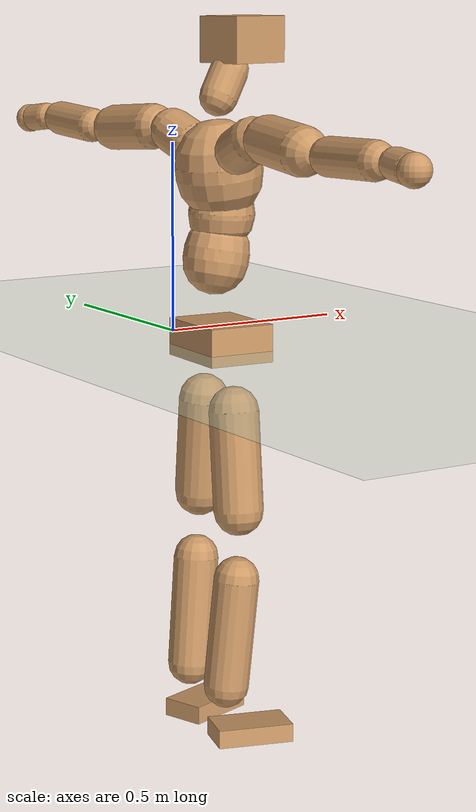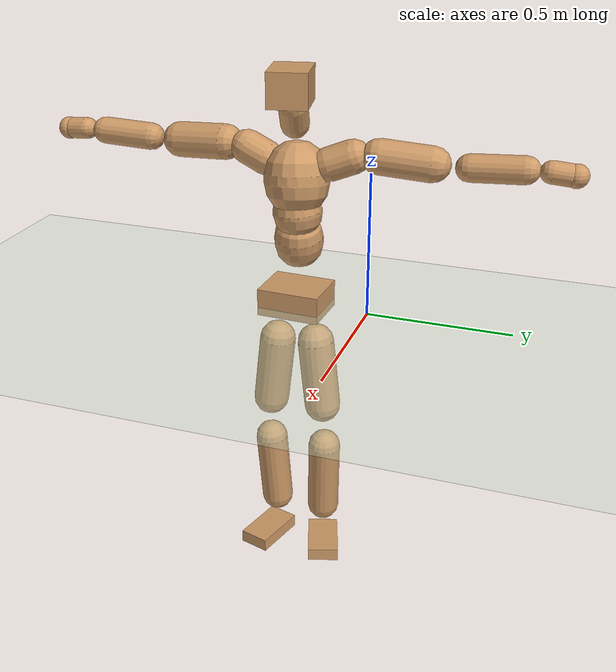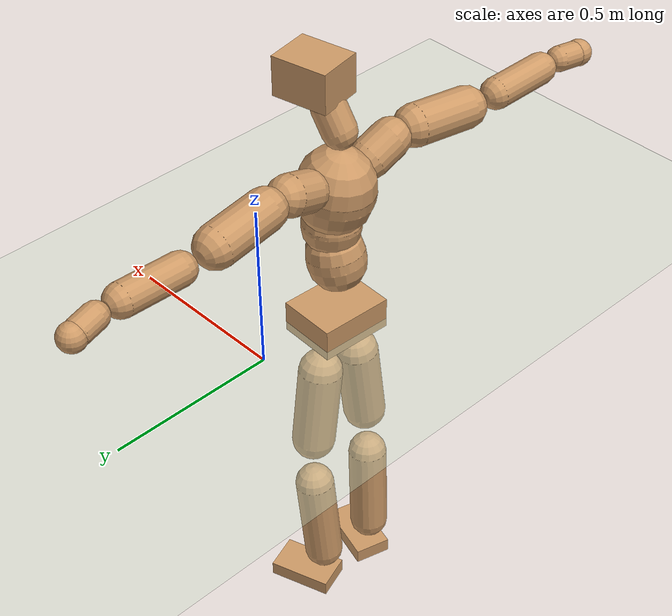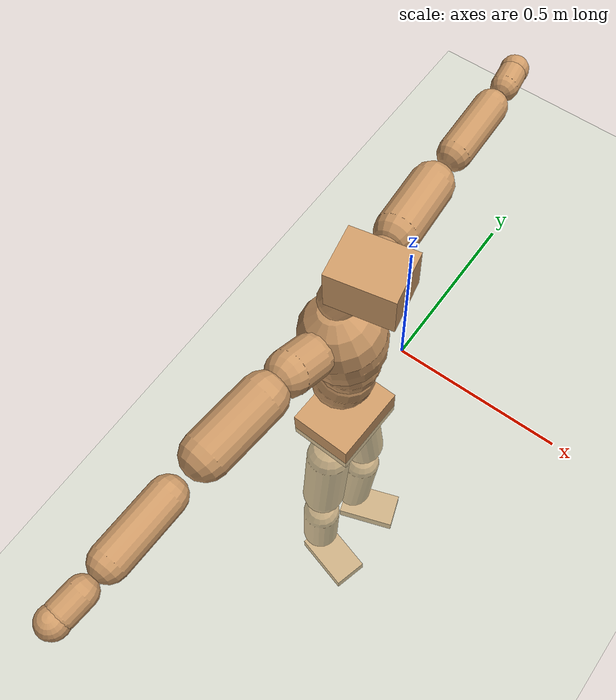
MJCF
<mujoco model="humanoid">
  <compiler coordinate="local" angle="radian"/>
  <default>
    <joint damping="0.0" armature="0.01" stiffness="0.0" limited="true"/>
    <geom conaffinity="1" condim="3" contype="7" margin="0.001" rgba="0.8 0.6 .4 1"/>
  </default>
  <asset>
    <texture type="skybox" builtin="gradient" rgb1=".4 .5 .6" rgb2="0 0 0" width="100" height="100"/>
    <texture builtin="flat" height="1278" mark="cross" markrgb="1 1 1" name="texgeom" random="0.01" rgb1="0.8 0.6 0.4" rgb2="0.8 0.6 0.4" type="cube" width="127"/>
    <texture builtin="checker" height="100" name="texplane" rgb1="0 0 0" rgb2="0.8 0.8 0.8" type="2d" width="100"/>
    <material name="MatPlane" reflectance="0.5" shininess="1" specular="1" texrepeat="60 60" texture="texplane"/>
    <material name="geom" texture="texgeom" texuniform="true"/>
  </asset>
  <worldbody>
    <light cutoff="100" diffuse="1 1 1" dir="-0 0 -1.3" directional="true" exponent="1" pos="0 0 1.3" specular=".1 .1 .1"/>
    <geom conaffinity="1" condim="3" name="floor" pos="0 0 0" rgba="0.8 0.9 0.8 1" size="100 100 .2" type="plane" material="MatPlane"/>
    <body name="Pelvis" pos="-0.0017 -0.2629 0.0264">
      <freejoint name="Pelvis"/>
      <geom type="box" contype="1" conaffinity="1" density="500" pos="-0.0126 0.0005 -0.0088" size="0.0888 0.1108 0.0484" quat="0.9998 0.0000 0.0000 -0.0215" name="Pelvis"/>
      <body name="L_Hip" pos="-0.0207 0.0616 -0.0886">
        <joint name="L_Hip_x" type="hinge" pos="0 0 0" axis="1 0 0" stiffness="800" damping="80" armature="0.02" range="-180.0000 180.0000"/>
        <joint name="L_Hip_y" type="hinge" pos="0 0 0" axis="0 1 0" stiffness="800" damping="80" armature="0.02" range="-180.0000 180.0000"/>
        <joint name="L_Hip_z" type="hinge" pos="0 0 0" axis="0 0 1" stiffness="800" damping="80" armature="0.02" range="-180.0000 180.0000"/>
        <geom type="capsule" contype="1" conaffinity="1" density="500" fromto="0.0014 0.0096 -0.0849 0.0057 0.0385 -0.3397" size="0.0647" name="L_Hip"/>
        <body name="L_Knee" pos="0.0071 0.0481 -0.4247">
          <joint name="L_Knee_x" type="hinge" pos="0 0 0" axis="1 0 0" stiffness="800" damping="80" armature="0.02" range="-180.0000 180.0000"/>
          <joint name="L_Knee_y" type="hinge" pos="0 0 0" axis="0 1 0" stiffness="800" damping="80" armature="0.02" range="-180.0000 180.0000"/>
          <joint name="L_Knee_z" type="hinge" pos="0 0 0" axis="0 0 1" stiffness="800" damping="80" armature="0.02" range="-180.0000 180.0000"/>
          <geom type="capsule" contype="1" conaffinity="1" density="500" fromto="-0.0081 -0.0033 -0.0956 -0.0323 -0.0132 -0.3825" size="0.0591" name="L_Knee"/>
          <body name="L_Ankle" pos="-0.0404 -0.0165 -0.4782">
            <joint name="L_Ankle_x" type="hinge" pos="0 0 0" axis="1 0 0" stiffness="800" damping="80" armature="0.02" range="-180.0000 180.0000"/>
            <joint name="L_Ankle_y" type="hinge" pos="0 0 0" axis="0 1 0" stiffness="800" damping="80" armature="0.02" range="-180.0000 180.0000"/>
            <joint name="L_Ankle_z" type="hinge" pos="0 0 0" axis="0 0 1" stiffness="800" damping="80" armature="0.02" range="-180.0000 180.0000"/>
            <geom type="box" contype="1" conaffinity="1" density="500" pos="0.0672 0.0229 -0.0338" size="0.0966 0.0567 0.0237" quat="0.9866 0.0000 0.0000 0.1633" name="L_Ankle"/>
            <body name="L_Toe" pos="0.1345 0.0458 -0.0676">
              <joint name="L_Toe_x" type="hinge" pos="0 0 0" axis="1 0 0" stiffness="500" damping="50" armature="0.02" range="-180.0000 180.0000"/>
              <joint name="L_Toe_y" type="hinge" pos="0 0 0" axis="0 1 0" stiffness="500" damping="50" armature="0.02" range="-180.0000 180.0000"/>
              <joint name="L_Toe_z" type="hinge" pos="0 0 0" axis="0 0 1" stiffness="500" damping="50" armature="0.02" range="-180.0000 180.0000"/>
              <geom type="box" contype="1" conaffinity="1" density="500" pos="0.0000 0.0000 0.0345" size="0.0011 0.0027 0.0012" quat="0.9859 0.0000 0.0000 0.1676" name="L_Toe"/>
            </body>
          </body>
        </body>
      </body>
      <body name="R_Hip" pos="-0.0176 -0.0632 -0.0968">
        <joint name="R_Hip_x" type="hinge" pos="0 0 0" axis="1 0 0" stiffness="800" damping="80" armature="0.02" range="-180.0000 180.0000"/>
        <joint name="R_Hip_y" type="hinge" pos="0 0 0" axis="0 1 0" stiffness="800" damping="80" armature="0.02" range="-180.0000 180.0000"/>
        <joint name="R_Hip_z" type="hinge" pos="0 0 0" axis="0 0 1" stiffness="800" damping="80" armature="0.02" range="-180.0000 180.0000"/>
        <geom type="capsule" contype="1" conaffinity="1" density="500" fromto="-0.0013 -0.0099 -0.0848 -0.0050 -0.0395 -0.3393" size="0.0642" name="R_Hip"/>
        <body name="R_Knee" pos="-0.0063 -0.0494 -0.4241">
          <joint name="R_Knee_x" type="hinge" pos="0 0 0" axis="1 0 0" stiffness="800" damping="80" armature="0.02" range="-180.0000 180.0000"/>
          <joint name="R_Knee_y" type="hinge" pos="0 0 0" axis="0 1 0" stiffness="800" damping="80" armature="0.02" range="-180.0000 180.0000"/>
          <joint name="R_Knee_z" type="hinge" pos="0 0 0" axis="0 0 1" stiffness="800" damping="80" armature="0.02" range="-180.0000 180.0000"/>
          <geom type="capsule" contype="1" conaffinity="1" density="500" fromto="-0.0073 0.0044 -0.0946 -0.0292 0.0174 -0.3783" size="0.059" name="R_Knee"/>
          <body name="R_Ankle" pos="-0.0365 0.0218 -0.4728">
            <joint name="R_Ankle_x" type="hinge" pos="0 0 0" axis="1 0 0" stiffness="800" damping="80" armature="0.02" range="-180.0000 180.0000"/>
            <joint name="R_Ankle_y" type="hinge" pos="0 0 0" axis="0 1 0" stiffness="800" damping="80" armature="0.02" range="-180.0000 180.0000"/>
            <joint name="R_Ankle_z" type="hinge" pos="0 0 0" axis="0 0 1" stiffness="800" damping="80" armature="0.02" range="-180.0000 180.0000"/>
            <geom type="box" contype="1" conaffinity="1" density="500" pos="0.0718 -0.0200 -0.0355" size="0.0994 0.056 0.024" quat="0.9908 0.0000 0.0000 -0.1355" name="R_Ankle"/>
            <body name="R_Toe" pos="0.1436 -0.04 -0.0711">
              <joint name="R_Toe_x" type="hinge" pos="0 0 0" axis="1 0 0" stiffness="500" damping="50" armature="0.02" range="-180.0000 180.0000"/>
              <joint name="R_Toe_y" type="hinge" pos="0 0 0" axis="0 1 0" stiffness="500" damping="50" armature="0.02" range="-180.0000 180.0000"/>
              <joint name="R_Toe_z" type="hinge" pos="0 0 0" axis="0 0 1" stiffness="500" damping="50" armature="0.02" range="-180.0000 180.0000"/>
              <geom type="box" contype="1" conaffinity="1" density="500" pos="0.0000 0.0000 0.0366" size="0.0012 0.0027 0.0013" quat="0.9919 0.0000 0.0000 -0.1273" name="R_Toe"/>
            </body>
          </body>
        </body>
      </body>
      <body name="Torso" pos="-0.0376 0.0049 0.1324">
        <joint name="Torso_x" type="hinge" pos="0 0 0" axis="1 0 0" stiffness="1000" damping="100" armature="0.02" range="-180.0000 180.0000"/>
        <joint name="Torso_y" type="hinge" pos="0 0 0" axis="0 1 0" stiffness="1000" damping="100" armature="0.02" range="-180.0000 180.0000"/>
        <joint name="Torso_z" type="hinge" pos="0 0 0" axis="0 0 1" stiffness="1000" damping="100" armature="0.02" range="-180.0000 180.0000"/>
        <geom type="capsule" contype="1" conaffinity="1" density="500" fromto="0.0183 0.0029 0.0898 0.0122 0.0019 0.0599" size="0.0841" name="Torso"/>
        <body name="Spine" pos="0.0306 0.0048 0.1497">
          <joint name="Spine_x" type="hinge" pos="0 0 0" axis="1 0 0" stiffness="1000" damping="100" armature="0.02" range="-180.0000 180.0000"/>
          <joint name="Spine_y" type="hinge" pos="0 0 0" axis="0 1 0" stiffness="1000" damping="100" armature="0.02" range="-180.0000 180.0000"/>
          <joint name="Spine_z" type="hinge" pos="0 0 0" axis="0 0 1" stiffness="1000" damping="100" armature="0.02" range="-180.0000 180.0000"/>
          <geom type="capsule" contype="1" conaffinity="1" density="500" fromto="0.0012 -0.0019 0.0370 0.0008 -0.0012 0.0247" size="0.0844" name="Spine"/>
          <body name="Chest" pos="0.002 -0.0031 0.0617">
            <joint name="Chest_x" type="hinge" pos="0 0 0" axis="1 0 0" stiffness="1000" damping="100" armature="0.02" range="-180.0000 180.0000"/>
            <joint name="Chest_y" type="hinge" pos="0 0 0" axis="0 1 0" stiffness="1000" damping="100" armature="0.02" range="-180.0000 180.0000"/>
            <joint name="Chest_z" type="hinge" pos="0 0 0" axis="0 0 1" stiffness="1000" damping="100" armature="0.02" range="-180.0000 180.0000"/>
            <geom type="capsule" contype="1" conaffinity="1" density="500" fromto="-0.0154 -0.0054 0.0991 -0.0103 -0.0036 0.0661" size="0.1107" name="Chest"/>
            <body name="Neck" pos="-0.032 -0.0151 0.2426">
              <joint name="Neck_x" type="hinge" pos="0 0 0" axis="1 0 0" stiffness="500" damping="50" armature="0.02" range="-180.0000 180.0000"/>
              <joint name="Neck_y" type="hinge" pos="0 0 0" axis="0 1 0" stiffness="500" damping="50" armature="0.02" range="-180.0000 180.0000"/>
              <joint name="Neck_z" type="hinge" pos="0 0 0" axis="0 0 1" stiffness="500" damping="50" armature="0.02" range="-180.0000 180.0000"/>
              <geom type="capsule" contype="1" conaffinity="1" density="500" fromto="0.0118 0.0020 0.0213 0.0474 0.0081 0.0854" size="0.0488" name="Neck"/>
              <body name="Head" pos="0.0592 0.0101 0.1067">
                <joint name="Head_x" type="hinge" pos="0 0 0" axis="1 0 0" stiffness="500" damping="50" armature="0.02" range="-180.0000 180.0000"/>
                <joint name="Head_y" type="hinge" pos="0 0 0" axis="0 1 0" stiffness="500" damping="50" armature="0.02" range="-180.0000 180.0000"/>
                <joint name="Head_z" type="hinge" pos="0 0 0" axis="0 0 1" stiffness="500" damping="50" armature="0.02" range="-180.0000 180.0000"/>
                <geom type="box" contype="1" conaffinity="1" density="500" pos="0.0306 0.0060 0.0544" size="0.0831 0.0666 0.0579" quat="0.9953 0.0000 0.0000 0.0973" name="Head"/>
              </body>
            </body>
            <body name="L_Thorax" pos="-0.0201 0.0779 0.1272">
              <joint name="L_Thorax_x" type="hinge" pos="0 0 0" axis="1 0 0" stiffness="500" damping="50" armature="0.02" range="-180.0000 180.0000"/>
              <joint name="L_Thorax_y" type="hinge" pos="0 0 0" axis="0 1 0" stiffness="500" damping="50" armature="0.02" range="-180.0000 180.0000"/>
              <joint name="L_Thorax_z" type="hinge" pos="0 0 0" axis="0 0 1" stiffness="500" damping="50" armature="0.02" range="-180.0000 180.0000"/>
              <geom type="capsule" contype="1" conaffinity="1" density="500" fromto="-0.0041 0.0263 0.0101 -0.0163 0.1050 0.0405" size="0.0582" name="L_Thorax"/>
              <body name="L_Shoulder" pos="-0.0204 0.1313 0.0506">
                <joint name="L_Shoulder_x" type="hinge" pos="0 0 0" axis="1 0 0" stiffness="500" damping="50" armature="0.02" range="-720.0000 720.0000"/>
                <joint name="L_Shoulder_y" type="hinge" pos="0 0 0" axis="0 1 0" stiffness="500" damping="50" armature="0.02" range="-720.0000 720.0000"/>
                <joint name="L_Shoulder_z" type="hinge" pos="0 0 0" axis="0 0 1" stiffness="500" damping="50" armature="0.02" range="-720.0000 720.0000"/>
                <geom type="capsule" contype="1" conaffinity="1" density="500" fromto="-0.0050 0.0583 -0.0044 -0.0202 0.2331 -0.0176" size="0.06" name="L_Shoulder"/>
                <body name="L_Elbow" pos="-0.0252 0.2914 -0.0219">
                  <joint name="L_Elbow_x" type="hinge" pos="0 0 0" axis="1 0 0" stiffness="500" damping="50" armature="0.02" range="-720.0000 720.0000"/>
                  <joint name="L_Elbow_y" type="hinge" pos="0 0 0" axis="0 1 0" stiffness="500" damping="50" armature="0.02" range="-720.0000 720.0000"/>
                  <joint name="L_Elbow_z" type="hinge" pos="0 0 0" axis="0 0 1" stiffness="500" damping="50" armature="0.02" range="-720.0000 720.0000"/>
                  <geom type="capsule" contype="1" conaffinity="1" density="500" fromto="-0.0013 0.0590 0.0030 -0.0051 0.2358 0.0120" size="0.0462" name="L_Elbow"/>
                  <body name="L_Wrist" pos="-0.0064 0.2948 0.015">
                    <joint name="L_Wrist_x" type="hinge" pos="0 0 0" axis="1 0 0" stiffness="300" damping="30" armature="0.02" range="-180.0000 180.0000"/>
                    <joint name="L_Wrist_y" type="hinge" pos="0 0 0" axis="0 1 0" stiffness="300" damping="30" armature="0.02" range="-180.0000 180.0000"/>
                    <joint name="L_Wrist_z" type="hinge" pos="0 0 0" axis="0 0 1" stiffness="300" damping="30" armature="0.02" range="-180.0000 180.0000"/>
                    <geom type="capsule" contype="1" conaffinity="1" density="500" fromto="-0.0035 0.0190 -0.0023 -0.0138 0.0762 -0.0093" size="0.0374" name="L_Wrist"/>
                    <body name="L_Hand" pos="-0.0173 0.0952 -0.0116">
                      <joint name="L_Hand_x" type="hinge" pos="0 0 0" axis="1 0 0" stiffness="300" damping="30" armature="0.02" range="-180.0000 180.0000"/>
                      <joint name="L_Hand_y" type="hinge" pos="0 0 0" axis="0 1 0" stiffness="300" damping="30" armature="0.02" range="-180.0000 180.0000"/>
                      <joint name="L_Hand_z" type="hinge" pos="0 0 0" axis="0 0 1" stiffness="300" damping="30" armature="0.02" range="-180.0000 180.0000"/>
                      <geom type="sphere" contype="1" conaffinity="1" density="500" size="0.0391" pos="0.0000 0.0000 0.0000" name="L_Hand"/>
                    </body>
                  </body>
                </body>
              </body>
            </body>
            <body name="R_Thorax" pos="-0.025 -0.0898 0.1256">
              <joint name="R_Thorax_x" type="hinge" pos="0 0 0" axis="1 0 0" stiffness="500" damping="50" armature="0.02" range="-180.0000 180.0000"/>
              <joint name="R_Thorax_y" type="hinge" pos="0 0 0" axis="0 1 0" stiffness="500" damping="50" armature="0.02" range="-180.0000 180.0000"/>
              <joint name="R_Thorax_z" type="hinge" pos="0 0 0" axis="0 0 1" stiffness="500" damping="50" armature="0.02" range="-180.0000 180.0000"/>
              <geom type="capsule" contype="1" conaffinity="1" density="500" fromto="-0.0016 -0.0243 0.0107 -0.0065 -0.0973 0.0427" size="0.0583" name="R_Thorax"/>
              <body name="R_Shoulder" pos="-0.0081 -0.1216 0.0533">
                <joint name="R_Shoulder_x" type="hinge" pos="0 0 0" axis="1 0 0" stiffness="500" damping="50" armature="0.02" range="-720.0000 720.0000"/>
                <joint name="R_Shoulder_y" type="hinge" pos="0 0 0" axis="0 1 0" stiffness="500" damping="50" armature="0.02" range="-720.0000 720.0000"/>
                <joint name="R_Shoulder_z" type="hinge" pos="0 0 0" axis="0 0 1" stiffness="500" damping="50" armature="0.02" range="-720.0000 720.0000"/>
                <geom type="capsule" contype="1" conaffinity="1" density="500" fromto="-0.0069 -0.0589 -0.0043 -0.0278 -0.2356 -0.0172" size="0.0613" name="R_Shoulder"/>
                <body name="R_Elbow" pos="-0.0347 -0.2945 -0.0215">
                  <joint name="R_Elbow_x" type="hinge" pos="0 0 0" axis="1 0 0" stiffness="500" damping="50" armature="0.02" range="-720.0000 720.0000"/>
                  <joint name="R_Elbow_y" type="hinge" pos="0 0 0" axis="0 1 0" stiffness="500" damping="50" armature="0.02" range="-720.0000 720.0000"/>
                  <joint name="R_Elbow_z" type="hinge" pos="0 0 0" axis="0 0 1" stiffness="500" damping="50" armature="0.02" range="-720.0000 720.0000"/>
                  <geom type="capsule" contype="1" conaffinity="1" density="500" fromto="-0.0012 -0.0598 0.0017 -0.0050 -0.2394 0.0067" size="0.0471" name="R_Elbow"/>
                  <body name="R_Wrist" pos="-0.0062 -0.2992 0.0084">
                    <joint name="R_Wrist_x" type="hinge" pos="0 0 0" axis="1 0 0" stiffness="300" damping="30" armature="0.02" range="-180.0000 180.0000"/>
                    <joint name="R_Wrist_y" type="hinge" pos="0 0 0" axis="0 1 0" stiffness="300" damping="30" armature="0.02" range="-180.0000 180.0000"/>
                    <joint name="R_Wrist_z" type="hinge" pos="0 0 0" axis="0 0 1" stiffness="300" damping="30" armature="0.02" range="-180.0000 180.0000"/>
                    <geom type="capsule" contype="1" conaffinity="1" density="500" fromto="-0.0022 -0.0194 -0.0019 -0.0088 -0.0776 -0.0075" size="0.038" name="R_Wrist"/>
                    <body name="R_Hand" pos="-0.011 -0.0971 -0.0094">
                      <joint name="R_Hand_x" type="hinge" pos="0 0 0" axis="1 0 0" stiffness="300" damping="30" armature="0.02" range="-180.0000 180.0000"/>
                      <joint name="R_Hand_y" type="hinge" pos="0 0 0" axis="0 1 0" stiffness="300" damping="30" armature="0.02" range="-180.0000 180.0000"/>
                      <joint name="R_Hand_z" type="hinge" pos="0 0 0" axis="0 0 1" stiffness="300" damping="30" armature="0.02" range="-180.0000 180.0000"/>
                      <geom type="sphere" contype="1" conaffinity="1" density="500" size="0.0395" pos="0.0000 0.0000 0.0000" name="R_Hand"/>
                    </body>
                  </body>
                </body>
              </body>
            </body>
          </body>
        </body>
      </body>
    </body>
  </worldbody>
  <actuator>
    <motor name="L_Hip_x" joint="L_Hip_x" gear="500"/>
    <motor name="L_Hip_y" joint="L_Hip_y" gear="500"/>
    <motor name="L_Hip_z" joint="L_Hip_z" gear="500"/>
    <motor name="L_Knee_x" joint="L_Knee_x" gear="500"/>
    <motor name="L_Knee_y" joint="L_Knee_y" gear="500"/>
    <motor name="L_Knee_z" joint="L_Knee_z" gear="500"/>
    <motor name="L_Ankle_x" joint="L_Ankle_x" gear="500"/>
    <motor name="L_Ankle_y" joint="L_Ankle_y" gear="500"/>
    <motor name="L_Ankle_z" joint="L_Ankle_z" gear="500"/>
    <motor name="L_Toe_x" joint="L_Toe_x" gear="500"/>
    <motor name="L_Toe_y" joint="L_Toe_y" gear="500"/>
    <motor name="L_Toe_z" joint="L_Toe_z" gear="500"/>
    <motor name="R_Hip_x" joint="R_Hip_x" gear="500"/>
    <motor name="R_Hip_y" joint="R_Hip_y" gear="500"/>
    <motor name="R_Hip_z" joint="R_Hip_z" gear="500"/>
    <motor name="R_Knee_x" joint="R_Knee_x" gear="500"/>
    <motor name="R_Knee_y" joint="R_Knee_y" gear="500"/>
    <motor name="R_Knee_z" joint="R_Knee_z" gear="500"/>
    <motor name="R_Ankle_x" joint="R_Ankle_x" gear="500"/>
    <motor name="R_Ankle_y" joint="R_Ankle_y" gear="500"/>
    <motor name="R_Ankle_z" joint="R_Ankle_z" gear="500"/>
    <motor name="R_Toe_x" joint="R_Toe_x" gear="500"/>
    <motor name="R_Toe_y" joint="R_Toe_y" gear="500"/>
    <motor name="R_Toe_z" joint="R_Toe_z" gear="500"/>
    <motor name="Torso_x" joint="Torso_x" gear="500"/>
    <motor name="Torso_y" joint="Torso_y" gear="500"/>
    <motor name="Torso_z" joint="Torso_z" gear="500"/>
    <motor name="Spine_x" joint="Spine_x" gear="500"/>
    <motor name="Spine_y" joint="Spine_y" gear="500"/>
    <motor name="Spine_z" joint="Spine_z" gear="500"/>
    <motor name="Chest_x" joint="Chest_x" gear="500"/>
    <motor name="Chest_y" joint="Chest_y" gear="500"/>
    <motor name="Chest_z" joint="Chest_z" gear="500"/>
    <motor name="Neck_x" joint="Neck_x" gear="500"/>
    <motor name="Neck_y" joint="Neck_y" gear="500"/>
    <motor name="Neck_z" joint="Neck_z" gear="500"/>
    <motor name="Head_x" joint="Head_x" gear="500"/>
    <motor name="Head_y" joint="Head_y" gear="500"/>
    <motor name="Head_z" joint="Head_z" gear="500"/>
    <motor name="L_Thorax_x" joint="L_Thorax_x" gear="500"/>
    <motor name="L_Thorax_y" joint="L_Thorax_y" gear="500"/>
    <motor name="L_Thorax_z" joint="L_Thorax_z" gear="500"/>
    <motor name="L_Shoulder_x" joint="L_Shoulder_x" gear="500"/>
    <motor name="L_Shoulder_y" joint="L_Shoulder_y" gear="500"/>
    <motor name="L_Shoulder_z" joint="L_Shoulder_z" gear="500"/>
    <motor name="L_Elbow_x" joint="L_Elbow_x" gear="500"/>
    <motor name="L_Elbow_y" joint="L_Elbow_y" gear="500"/>
    <motor name="L_Elbow_z" joint="L_Elbow_z" gear="500"/>
    <motor name="L_Wrist_x" joint="L_Wrist_x" gear="500"/>
    <motor name="L_Wrist_y" joint="L_Wrist_y" gear="500"/>
    <motor name="L_Wrist_z" joint="L_Wrist_z" gear="500"/>
    <motor name="L_Hand_x" joint="L_Hand_x" gear="500"/>
    <motor name="L_Hand_y" joint="L_Hand_y" gear="500"/>
    <motor name="L_Hand_z" joint="L_Hand_z" gear="500"/>
    <motor name="R_Thorax_x" joint="R_Thorax_x" gear="500"/>
    <motor name="R_Thorax_y" joint="R_Thorax_y" gear="500"/>
    <motor name="R_Thorax_z" joint="R_Thorax_z" gear="500"/>
    <motor name="R_Shoulder_x" joint="R_Shoulder_x" gear="500"/>
    <motor name="R_Shoulder_y" joint="R_Shoulder_y" gear="500"/>
    <motor name="R_Shoulder_z" joint="R_Shoulder_z" gear="500"/>
    <motor name="R_Elbow_x" joint="R_Elbow_x" gear="500"/>
    <motor name="R_Elbow_y" joint="R_Elbow_y" gear="500"/>
    <motor name="R_Elbow_z" joint="R_Elbow_z" gear="500"/>
    <motor name="R_Wrist_x" joint="R_Wrist_x" gear="500"/>
    <motor name="R_Wrist_y" joint="R_Wrist_y" gear="500"/>
    <motor name="R_Wrist_z" joint="R_Wrist_z" gear="500"/>
    <motor name="R_Hand_x" joint="R_Hand_x" gear="500"/>
    <motor name="R_Hand_y" joint="R_Hand_y" gear="500"/>
    <motor name="R_Hand_z" joint="R_Hand_z" gear="500"/>
  </actuator>
  <contact>
    <exclude body1="Torso" body2="Chest"/>
    <exclude body1="Head" body2="Chest"/>
    <exclude body1="R_Knee" body2="R_Toe"/>
    <exclude body1="R_Knee" body2="L_Ankle"/>
    <exclude body1="R_Knee" body2="L_Toe"/>
    <exclude body1="L_Knee" body2="L_Toe"/>
    <exclude body1="L_Knee" body2="R_Ankle"/>
    <exclude body1="L_Knee" body2="R_Toe"/>
    <exclude body1="L_Shoulder" body2="Chest"/>
    <exclude body1="R_Shoulder" body2="Chest"/>
  </contact>
  <sensor/>
  <size njmax="700" nconmax="700"/>
</mujoco>
